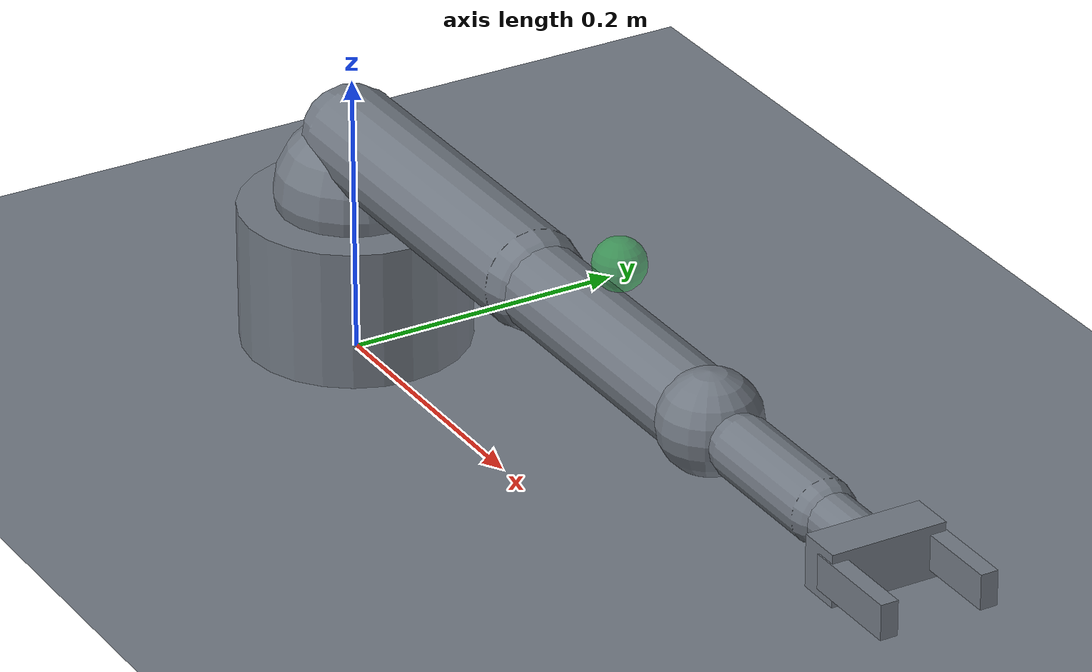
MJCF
<mujoco model="simple_controller_arm">
  <compiler angle="radian" autolimits="true"/>
  <option timestep="0.002" gravity="0 0 -9.81" integrator="RK4"/>
  <visual>
    <global offwidth="1280" offheight="960"/>
  </visual>

  <default>
    <geom rgba="0.45 0.48 0.52 1" density="600" friction="0.8 0.1 0.1"/>
    <joint damping="1.5" armature="0.02" limited="true"/>
    <position kp="120" kv="18"/>
  </default>

  <asset>
    <material name="base_mat" rgba="0.18 0.2 0.22 1"/>
    <material name="arm_mat" rgba="0.35 0.52 0.66 1"/>
    <material name="wrist_mat" rgba="0.70 0.63 0.45 1"/>
    <material name="gripper_mat" rgba="0.12 0.12 0.12 1"/>
    <texture name="grid" type="2d" builtin="checker" rgb1="0.25 0.25 0.25" rgb2="0.32 0.32 0.32" width="256" height="256"/>
    <material name="floor_mat" texture="grid" texrepeat="6 6" reflectance="0.1"/>
  </asset>

  <worldbody>
    <light pos="0 -1 2" dir="0 1 -2"/>
    <camera name="overview" pos="0.78 -0.92 0.72" xyaxes="0.78 0.63 0 -0.29 0.36 0.89"/>
    <geom name="floor" type="plane" size="1.5 1.5 0.03" material="floor_mat"/>
    <body name="base" pos="0 0 0.06">
      <geom name="base_geom" type="cylinder" size="0.08 0.05" material="base_mat"/>

      <body name="shoulder_yaw" pos="0 0 0.06">
        <joint name="joint_1_yaw" type="hinge" axis="0 0 1" range="-2.8 2.8"/>
        <geom type="sphere" size="0.055" material="base_mat"/>

        <body name="shoulder_pitch" pos="0 0 0.04">
          <joint name="joint_2_shoulder" type="hinge" axis="0 1 0" range="-1.6 1.4"/>
          <geom type="capsule" fromto="0 0 0 0.24 0 0" size="0.035" material="arm_mat"/>

          <body name="elbow_pitch" pos="0.24 0 0">
            <joint name="joint_3_elbow" type="hinge" axis="0 1 0" range="-2.4 0.2"/>
            <geom type="capsule" fromto="0 0 0 0.22 0 0" size="0.03" material="arm_mat"/>

            <body name="wrist_yaw" pos="0.22 0 0">
              <joint name="joint_4_wrist_yaw" type="hinge" axis="0 0 1" range="-2.8 2.8"/>
              <geom type="sphere" size="0.035" material="wrist_mat"/>

              <body name="wrist_pitch" pos="0.04 0 0">
                <joint name="joint_5_wrist_pitch" type="hinge" axis="0 1 0" range="-1.8 1.8"/>
                <geom type="capsule" fromto="0 0 0 0.09 0 0" size="0.022" material="wrist_mat"/>

                <body name="wrist_roll" pos="0.09 0 0">
                  <joint name="joint_6_wrist_roll" type="hinge" axis="1 0 0" range="-3.14 3.14"/>
                  <geom type="capsule" fromto="0 0 0 0.05 0 0" size="0.018" material="wrist_mat"/>

                  <body name="gripper" pos="0.06 0 0">
                    <site name="ee_site" pos="0 0 0" size="0.012" rgba="1 0.2 0.1 1"/>
                    <geom name="palm" type="box" pos="0 0 0" size="0.015 0.04 0.018" material="gripper_mat"/>

                    <body name="left_finger" pos="0 0.035 0">
                      <joint name="left_gripper" type="slide" axis="0 1 0" range="0 0.025" damping="0.4"/>
                      <geom type="box" pos="0.035 0 0" size="0.035 0.006 0.012" material="gripper_mat"/>
                    </body>

                    <body name="right_finger" pos="0 -0.035 0">
                      <joint name="right_gripper" type="slide" axis="0 -1 0" range="0 0.025" damping="0.4"/>
                      <geom type="box" pos="0.035 0 0" size="0.035 0.006 0.012" material="gripper_mat"/>
                    </body>
                  </body>
                </body>
              </body>
            </body>
          </body>
        </body>
      </body>
    </body>

    <body name="target_marker" mocap="true" pos="0.35 0 0.22">
      <geom name="target_marker_geom" type="sphere" size="0.018" rgba="0.1 0.8 0.25 0.45" contype="0" conaffinity="0"/>
    </body>
  </worldbody>

  <actuator>
    <position name="act_joint_1" joint="joint_1_yaw" ctrlrange="-2.8 2.8"/>
    <position name="act_joint_2" joint="joint_2_shoulder" ctrlrange="-1.6 1.4"/>
    <position name="act_joint_3" joint="joint_3_elbow" ctrlrange="-2.4 0.2"/>
    <position name="act_joint_4" joint="joint_4_wrist_yaw" ctrlrange="-2.8 2.8"/>
    <position name="act_joint_5" joint="joint_5_wrist_pitch" ctrlrange="-1.8 1.8"/>
    <position name="act_joint_6" joint="joint_6_wrist_roll" ctrlrange="-3.14 3.14"/>
    <position name="act_left_gripper" joint="left_gripper" ctrlrange="0 0.025" kp="80" kv="8"/>
    <position name="act_right_gripper" joint="right_gripper" ctrlrange="0 0.025" kp="80" kv="8"/>
  </actuator>
</mujoco>
